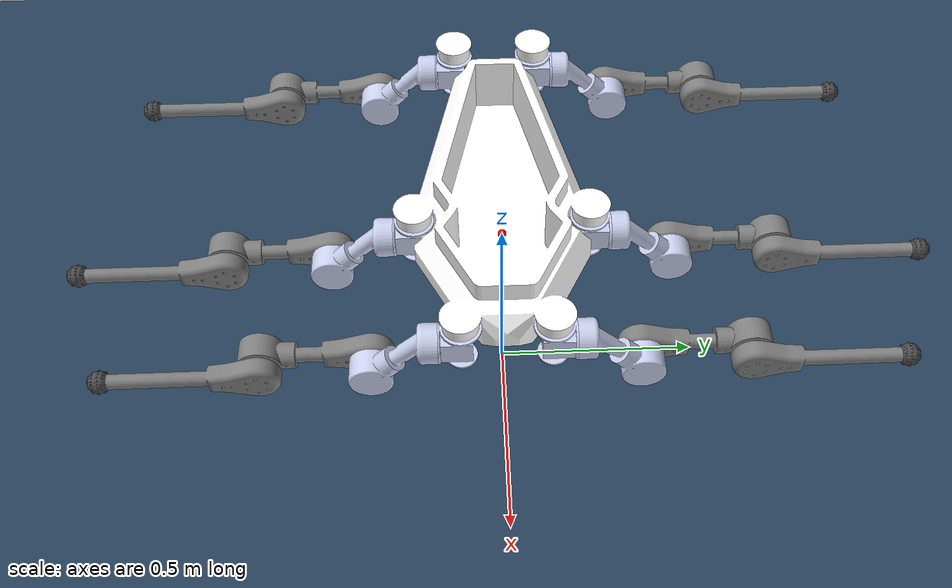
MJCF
<mujoco model="hex4 scene">
  <include file="hex4.xml"/>

  <visual>
    <headlight diffuse="0.6 0.6 0.6" ambient="0.3 0.3 0.3" specular="0 0 0"/>
    <rgba haze="0.15 0.25 0.35 1"/>
    <global azimuth="-130" elevation="-20"/>
  </visual>

  <asset>
    <texture type="skybox" builtin="gradient" rgb1="0.3 0.5 0.7" rgb2="0 0 0" width="512" height="3072"/>
    <texture type="2d" name="groundplane" builtin="checker" mark="edge" rgb1="0.2 0.3 0.4" rgb2="0.1 0.2 0.3"
      markrgb="0.8 0.8 0.8" width="300" height="300"/>
    <material name="groundplane" texture="groundplane" texuniform="true" texrepeat="5 5" reflectance="0.2"/>
  </asset>

  <worldbody>
    <light pos="0 0 1.5" dir="0 0 -1" directional="true"/>
    <geom name="floor" size="0 0 0.05" type="plane" material="groundplane"/>
  </worldbody>

    <keyframe>
        <key name="home" qpos="
        0 0 0.55  1 0 0 0
                     0.0 0.4 -0. 1.5
                     0.0 0.4 -0. 1.5
                     0.0 0.4 -0. 1.5
                     0.0 0.4 -0. 1.5
                     0.0 0.4 -0. 1.5
                     0.0 0.4 -0. 1.5"
          ctrl="
            0 0 0 0
            0 0 0 0
            0 0 0 0
            0 0 0 0
            0 0 0 0
            0 0 0 0"/>
    </keyframe>
</mujoco>

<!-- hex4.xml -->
<mujoco model="hex4">
  <compiler angle="radian" meshdir="assets" autolimits="true"/>

  <option cone="elliptic" impratio="100" ccd_iterations="500" timestep="0.001"/>

  <default>
    <default class="visual">
      <geom type="mesh" contype="0" conaffinity="0" mass="0" group="1"/>
    </default>
    <default class="collision">
      <geom type="mesh" contype="1" conaffinity="1" group="3" friction="0.9 0.1 0.1"/>
    </default>
  </default>

  <asset>
    <mesh name="base_link" file="base_link.STL"/>
    <mesh name="RF_link0" file="RF_link0.STL"/>
    <mesh name="RF_link1" file="RF_link1.STL"/>
    <mesh name="RF_link2" file="RF_link2.STL"/>
    <mesh name="RF_link3" file="RF_link3.STL"/>
    <mesh name="RF_foot"  file="RF_foot.STL"/>
    <mesh name="RM_link0" file="RM_link0.STL"/>
    <mesh name="RM_link1" file="RM_link1.STL"/>
    <mesh name="RM_link2" file="RM_link2.STL"/>
    <mesh name="RM_link3" file="RM_link3.STL"/>
    <mesh name="RM_foot"  file="RM_foot.STL"/>
    <mesh name="RB_link0" file="RB_link0.STL"/>
    <mesh name="RB_link1" file="RB_link1.STL"/>
    <mesh name="RB_link2" file="RB_link2.STL"/>
    <mesh name="RB_link3" file="RB_link3.STL"/>
    <mesh name="RB_foot"  file="RB_foot.STL"/>
    <mesh name="LF_link0" file="LF_link0.STL"/>
    <mesh name="LF_link1" file="LF_link1.STL"/>
    <mesh name="LF_link2" file="LF_link2.STL"/>
    <mesh name="LF_link3" file="LF_link3.STL"/>
    <mesh name="LF_foot"  file="LF_foot.STL"/>
    <mesh name="LM_link0" file="LM_link0.STL"/>
    <mesh name="LM_link1" file="LM_link1.STL"/>
    <mesh name="LM_link2" file="LM_link2.STL"/>
    <mesh name="LM_link3" file="LM_link3.STL"/>
    <mesh name="LM_foot"  file="LM_foot.STL"/>
    <mesh name="LB_link0" file="LB_link0.STL"/>
    <mesh name="LB_link1" file="LB_link1.STL"/>
    <mesh name="LB_link2" file="LB_link2.STL"/>
    <mesh name="LB_link3" file="LB_link3.STL"/>
    <mesh name="LB_foot"  file="LB_foot.STL"/>
  </asset>

  <worldbody>

    <body name="base_link" pos="0 0 0.5">
      <freejoint name="base_free"/>
      <!-- 添加 IMU 所需的 site -->
      <site name="imu" pos="0 0 0" size="0.01" rgba="1 0 0 1"/>
      <!-- fullinertia: ixx iyy izz ixy ixz iyz -->
      <inertial pos="-0.11306 1.6087E-07 0.015131" mass="18.658"
                fullinertia="0.2099 0.96028 1.1173 8.2415E-07 -0.0011811 8.8359E-08"/>
      <geom class="visual" mesh="base_link" rgba="1 1 1 1"/>

      <!-- RF (Right Front) Leg -->
      <body name="RF_link0" pos="0.3 -0.1 0" euler="0 0 -1.5708">
        <joint name="RF_joint0" type="hinge" axis="0 0 1" range="-3.14 3.14" damping="0.1"/>
        <inertial pos="0.028662 -3.8858E-16 0.0018937" mass="1.0785"
                  fullinertia="0.0010572 0.0014046 0.0010857 -4.3198E-19 -1.1802E-18 -2.2555E-19"/>
        <geom class="visual" mesh="RF_link0" rgba="0.792 0.819 0.933 1"/>
        <geom class="collision" mesh="RF_link0"/>

        <body name="RF_link1" pos="0.05 0 0" euler="1.5708 1.5708 0">
          <joint name="RF_joint1" type="hinge" axis="0 0 1" range="-3.14 3.14" damping="0.1"/>
          <inertial pos="-0.013313 -0.078792 0.12187" mass="1.1898"
                    fullinertia="0.0016823 0.0016742 0.0017439 9.6806E-05 -9.9578E-05 -0.00024246"/>
          <geom class="visual" mesh="RF_link1" rgba="0.792 0.819 0.933 1"/>

          <body name="RF_link2" pos="0 -0.10796 0.15296" euler="1.5708 1.5708 0">
            <joint name="RF_joint2" type="hinge" axis="0 0 1" range="-3.14 3.14" damping="0.1"/>
            <inertial pos="5.7607E-07 0.18665 -0.042993" mass="1.2302"
                      fullinertia="0.002316 0.001494 0.0022028 -2.1887E-08 -1.4162E-09 0.0001734"/>
            <geom class="visual" mesh="RF_link2" rgba="0.498 0.498 0.498 1"/>
            <geom class="collision" mesh="RF_link2"/>

            <body name="RF_link3" pos="0 0.25 0" euler="0 0 0">
              <joint name="RF_joint3" type="hinge" axis="0 0 1" range="-3.14 3.14" damping="0.1"/>
              <inertial pos="8.9473E-09 0.081551 0.0030752" mass="0.3834"
                        fullinertia="0.0010865 0.00026792 0.001212 -1.4698E-12 -2.5591E-11 -3.7009E-05"/>
              <geom class="visual" mesh="RF_link3" rgba="0.498 0.498 0.498 1"/>

              <body name="RF_foot" pos="0 0.35 0" euler="3.1416 0 -1.5708">
                <inertial pos="0.00464 1.11E-16 -4.04E-16" mass="0.039234"
                          fullinertia="1.3682E-05 1.1102E-05 1.1102E-05 3.0967E-17 9.554E-18 -7.737E-18"/>
                <geom class="visual" mesh="RM_foot" rgba="0.298 0.298 0.298 1"/>
                <geom class="collision" mesh="RM_foot" name="RF_foot_geom"/>
                <site name="RF_touch_site" size="0.01" rgba="0 0 0 0"/>
              </body>
            </body>
          </body>
        </body>
      </body>

      <!-- RM (Right Middle) Leg -->
      <body name="RM_link0" pos="0 -0.2 0" euler="0 0 -1.5708">
        <joint name="RM_joint0" type="hinge" axis="0 0 1" range="-3.14 3.14" damping="0.1"/>
        <inertial pos="0.028662 -9.2517E-19 0.0018937" mass="1.0785"
                  fullinertia="0.0010572 0.0014046 0.0010857 -2.0448E-19 -1.2054E-18 -1.466E-19"/>
        <geom class="visual" mesh="RM_link0" rgba="0.792 0.819 0.933 1"/>
        <geom class="collision" mesh="RM_link0"/>

        <body name="RM_link1" pos="0.05 0 0" euler="1.5708 1.5708 0">
          <joint name="RM_joint1" type="hinge" axis="0 0 1" range="-3.14 3.14" damping="0.1"/>
          <inertial pos="-0.013313 -0.078792 0.12187" mass="1.1898"
                    fullinertia="0.0016823 0.0016742 0.0017439 9.6806E-05 -9.9578E-05 -0.00024246"/>
          <geom class="visual" mesh="RM_link1" rgba="0.792 0.819 0.933 1"/>

          <body name="RM_link2" pos="0 -0.10796 0.15296" euler="1.5708 1.5708 0">
            <joint name="RM_joint2" type="hinge" axis="0 0 1" range="-3.14 3.14" damping="0.1"/>
            <inertial pos="5.760688E-07 0.186653 -0.042993" mass="1.230156"
                      fullinertia="0.002316 0.001494 0.0022028 -2.1887E-08 -1.4162E-09 0.0001734"/>
            <geom class="visual" mesh="RM_link2" rgba="0.498 0.498 0.498 1"/>
            <geom class="collision" mesh="RM_link2"/>

            <body name="RM_link3" pos="0 0.25 0" euler="0 0 0">
              <joint name="RM_joint3" type="hinge" axis="0 0 1" range="-3.14 3.14" damping="0.1"/>
              <inertial pos="8.947E-09 0.081551 0.003075" mass="0.383404"
                        fullinertia="0.0010865 0.00026792 0.001212 -1.4698E-12 -2.5591E-11 -3.7009E-05"/>
              <geom class="visual" mesh="RM_link3" rgba="0.498 0.498 0.498 1"/>

              <body name="RM_foot" pos="0 0.35 0" euler="3.1416 0 -1.5708">
                <inertial pos="0.00464 1.11E-16 -4.04E-16" mass="0.039234"
                          fullinertia="1.3682E-05 1.1102E-05 1.1102E-05 3.0967E-17 9.554E-18 -7.737E-18"/>
                <geom class="visual" mesh="RM_foot" rgba="0.298 0.298 0.298 1"/>
                <geom class="collision" mesh="RM_foot" name="RM_foot_geom"/>
                <site name="RM_touch_site" size="0.01" rgba="0 0 0 0"/>
              </body>
            </body>
          </body>
        </body>
      </body>

      <!-- RB (Right Back) Leg -->
      <body name="RB_link0" pos="-0.55 -0.1 0" euler="0 0 -1.5708">
        <joint name="RB_joint0" type="hinge" axis="0 0 1" range="-3.14 3.14" damping="0.1"/>
        <inertial pos="0.028662 0 0.001894" mass="1.07845"
                  fullinertia="0.0010572 0.0014046 0.0010857 -2.644E-19 -1.068E-18 -1.331E-19"/>
        <geom class="visual" mesh="RB_link0" rgba="0.792 0.819 0.933 1"/>
        <geom class="collision" mesh="RB_link0"/>

        <body name="RB_link1" pos="0.05 0 0" euler="1.5708 1.5708 0">
          <joint name="RB_joint1" type="hinge" axis="0 0 1" range="-3.14 3.14" damping="0.1"/>
          <inertial pos="-0.013313 -0.078792 0.12187" mass="1.18978"
                    fullinertia="0.0016823 0.0016742 0.0017439 9.68E-05 -9.95E-05 -0.0002425"/>
          <geom class="visual" mesh="RB_link1" rgba="0.792 0.819 0.933 1"/>

          <body name="RB_link2" pos="0 -0.10796 0.15296" euler="1.5708 1.5708 0">
            <joint name="RB_joint2" type="hinge" axis="0 0 1" range="-3.14 3.14" damping="0.1"/>
            <inertial pos="5.7607E-07 0.18665 -0.04299" mass="1.23016"
                      fullinertia="0.002316 0.001494 0.002203 -2.1887E-08 -1.4162E-09 0.0001734"/>
            <geom class="visual" mesh="RB_link2" rgba="0.498 0.498 0.498 1"/>
            <geom class="collision" mesh="RB_link2"/>

            <body name="RB_link3" pos="0 0.25 0" euler="0 0 0">
              <joint name="RB_joint3" type="hinge" axis="0 0 1" range="-3.14 3.14" damping="0.1"/>
              <inertial pos="8.947E-09 0.08155 -0.003075" mass="0.383405"
                        fullinertia="0.0010865 0.0002679 0.001212 -1.4698E-12 -2.559E-11 3.701E-05"/>
              <geom class="visual" mesh="RB_link3" rgba="0.498 0.498 0.498 1"/>

              <body name="RB_foot" pos="0 0.35 0" euler="3.1416 0 -1.5708">
                <inertial pos="0.00464 -8.66E-15 -2.11E-15" mass="0.039234"
                          fullinertia="1.368E-05 1.11E-05 1.11E-05 1.849E-17 4.9E-18 -7.737E-18"/>
                <geom class="visual" mesh="RB_foot" rgba="0.298 0.298 0.298 1"/>
                <geom class="collision" mesh="RB_foot" name="RB_foot_geom"/>
                <site name="RB_touch_site" size="0.01" rgba="0 0 0 0"/>
              </body>
            </body>
          </body>
        </body>
      </body>

      <!-- LF (Left Front) Leg -->
      <body name="LF_link0" pos="0.3 0.1 0" euler="3.1416 0 -1.5708">
        <joint name="LF_joint0" type="hinge" axis="0 0 1" range="-3.14 3.14" damping="0.1"/>
        <inertial pos="0.028662 -2.775E-16 -0.00189" mass="1.07846"
                  fullinertia="0.0010572 0.0014046 0.0010857 2.625E-19 7.933E-19 -4.94E-19"/>
        <geom class="visual" mesh="LF_link0" rgba="0.792 0.819 0.933 1"/>
        <geom class="collision" mesh="LF_link0"/>

        <body name="LF_link1" pos="0.05 0 0" euler="-1.5708 -1.5708 0">
          <joint name="LF_joint1" type="hinge" axis="0 0 1" range="-3.14 3.14" damping="0.1"/>
          <inertial pos="-0.01354 -0.07879 -0.12187" mass="1.18978"
                    fullinertia="0.0016823 0.0016742 0.0017439 9.608E-05 9.33E-05 0.0002425"/>
          <geom class="visual" mesh="LF_link1" rgba="0.792 0.819 0.933 1"/>

          <body name="LF_link2" pos="0 -0.10796 -0.15296" euler="-1.5708 -1.5708 0">
            <joint name="LF_joint2" type="hinge" axis="0 0 1" range="-3.14 3.14" damping="0.1"/>
            <inertial pos="-5.76E-07 0.18665 0.04299" mass="1.23016"
                      fullinertia="0.002316 0.001494 0.002203 2.1887E-08 -1.4162E-09 -0.0001734"/>
            <geom class="visual" mesh="LF_link2" rgba="0.498 0.498 0.498 1"/>
            <geom class="collision" mesh="LF_link2"/>

            <body name="LF_link3" pos="0 0.25 0" euler="0 0 0">
              <joint name="LF_joint3" type="hinge" axis="0 0 1" range="-3.14 3.14" damping="0.1"/>
              <inertial pos="-8.947E-09 0.08155 -0.003075" mass="0.383405"
                        fullinertia="0.0010865 0.0002679 0.001212 1.469E-12 -2.559E-11 3.701E-05"/>
              <geom class="visual" mesh="LF_link3" rgba="0.498 0.498 0.498 1"/>

              <body name="LF_foot" pos="0 0.35 0" euler="3.14159 0 -1.5708">
                <inertial pos="0.00464 -1.388E-17 -1.388E-15" mass="0.039234"
                          fullinertia="1.368E-05 1.11E-05 1.11E-05 -2.91E-18 1.847E-17 -1.43E-17"/>
                <geom class="visual" mesh="LF_foot" rgba="0.298 0.298 0.298 1"/>
                <geom class="collision" mesh="LF_foot" name="LF_foot_geom"/>
                <site name="LF_touch_site" size="0.01" rgba="0 0 0 0"/>

              </body>
            </body>
          </body>
        </body>
      </body>

      <!-- LM (Left Middle) Leg -->
      <body name="LM_link0" pos="0 0.2 0" euler="3.1416 0 -1.5708">
        <joint name="LM_joint0" type="hinge" axis="0 0 1" range="-3.14 3.14" damping="0.1"/>
        <inertial pos="0.028662 -1.89E-16 -0.00189" mass="1.07846"
                  fullinertia="0.0010572 0.0014046 0.0010857 1.275E-19 8.62E-19 -6.305E-19"/>
        <geom class="visual" mesh="LM_link0" rgba="0.792 0.819 0.933 1"/>
        <geom class="collision" mesh="LM_link0"/>

        <body name="LM_link1" pos="0.05 0 0" euler="-1.5708 -1.5708 0">
          <joint name="LM_joint1" type="hinge" axis="0 0 1" range="-3.14 3.14" damping="0.1"/>
          <inertial pos="-0.01354 -0.07879 -0.12187" mass="1.18978"
                    fullinertia="0.0016823 0.0016742 0.0017439 9.608E-05 9.33E-05 0.0002425"/>
          <geom class="visual" mesh="LM_link1" rgba="0.792 0.819 0.933 1"/>

          <body name="LM_link2" pos="0 -0.10796 -0.15296" euler="-1.5708 -1.5708 0">
            <joint name="LM_joint2" type="hinge" axis="0 0 1" range="-3.14 3.14" damping="0.1"/>
            <inertial pos="-5.76E-07 0.18665 0.04299" mass="1.23016"
                      fullinertia="0.002316 0.001494 0.002203 2.1887E-08 -1.4162E-09 -0.0001734"/>
            <geom class="visual" mesh="LM_link2" rgba="0.498 0.498 0.498 1"/>
            <geom class="collision" mesh="LM_link2"/>

            <body name="LM_link3" pos="0 0.25 0" euler="0 0 0">
              <joint name="LM_joint3" type="hinge" axis="0 0 1" range="-3.14 3.14" damping="0.1"/>
              <inertial pos="-8.947E-09 0.08155 -0.003075" mass="0.383405"
                        fullinertia="0.0010865 0.0002679 0.001212 1.469E-12 -2.559E-11 3.701E-05"/>
              <geom class="visual" mesh="LM_link3" rgba="0.498 0.498 0.498 1"/>

              <body name="LM_foot" pos="0 0.35 0" euler="3.1416 0 -1.5708">
                <inertial pos="0.00464 9.71E-17 -2.53E-16" mass="0.039234"
                          fullinertia="1.368E-05 1.11E-05 1.11E-05 1.158E-17 -1.265E-17 1.329E-17"/>
                <geom class="visual" mesh="LM_foot" rgba="0.298 0.298 0.298 1"/>
                <geom class="collision" mesh="LM_foot" name="LM_foot_geom"/>
                <site name="LM_touch_site" size="0.01" rgba="0 0 0 0"/>
              </body>
            </body>
          </body>
        </body>
      </body>

      <!-- LB (Left Back) Leg -->
      <body name="LB_link0" pos="-0.55 0.1 0" euler="3.1416 0 -1.5708">
        <joint name="LB_joint0" type="hinge" axis="0 0 1" range="-3.14 3.14" damping="0.1"/>
        <inertial pos="0.028662 -2.775E-16 -0.00189" mass="1.07846"
                  fullinertia="0.0010572 0.0014046 0.0010857 1.275E-19 8.623E-19 -6.305E-19"/>
        <geom class="visual" mesh="LB_link0" rgba="0.792 0.819 0.933 1"/>
        <geom class="collision" mesh="LB_link0"/>

        <body name="LB_link1" pos="0.05 0 0" euler="-1.5708 -1.5708 0">
          <joint name="LB_joint1" type="hinge" axis="0 0 1" range="-3.14 3.14" damping="0.1"/>
          <inertial pos="-0.01354 -0.07879 -0.12187" mass="1.18978"
                    fullinertia="0.0016823 0.0016742 0.0017439 9.608E-05 9.33E-05 0.0002425"/>
          <geom class="visual" mesh="LB_link1" rgba="0.792 0.819 0.933 1"/>

          <body name="LB_link2" pos="0 -0.10796 -0.15296" euler="-1.5708 -1.5708 0">
            <joint name="LB_joint2" type="hinge" axis="0 0 1" range="-3.14 3.14" damping="0.1"/>
            <inertial pos="-5.76E-07 0.18665 0.04299" mass="1.23016"
                      fullinertia="0.002316 0.001494 0.002203 2.1887E-08 -1.4162E-09 -0.0001734"/>
            <geom class="visual" mesh="LB_link2" rgba="0.498 0.498 0.498 1"/>
            <geom class="collision" mesh="LB_link2"/>

            <body name="LB_link3" pos="0 0.25 0" euler="0 0 0">
              <joint name="LB_joint3" type="hinge" axis="0 0 1" range="-3.14 3.14" damping="0.1"/>
              <inertial pos="-8.947E-09 0.08155 -0.003075" mass="0.383405"
                        fullinertia="0.0010865 0.0002679 0.001212 1.469E-12 -2.559E-11 3.701E-05"/>
              <geom class="visual" mesh="LB_link3" rgba="0.498 0.498 0.498 1"/>

              <body name="LB_foot" pos="0 0.35 0" euler="3.1416 0 -1.5708">
                <inertial pos="0.00464 9.71E-17 -2.53E-16" mass="0.039234"
                          fullinertia="1.368E-05 1.11E-05 1.11E-05 1.122E-17 -2.54E-17 -1.57E-18"/>
                <geom class="visual" mesh="LM_foot" rgba="0.298 0.298 0.298 1"/>
                <geom class="collision" mesh="LM_foot" name="LB_foot_geom"/>
                <site name="LB_touch_site" size="0.01" rgba="0 0 0 0"/>
              </body>
            </body>
          </body>
        </body>
      </body>
    </body>
  </worldbody>

  <actuator>
    <position name="RF_0" joint="RF_joint0" forcerange="-88 88" ctrlrange="-0.80 0.80" gear="1" ctrllimited="true"/>
    <position name="RF_1" joint="RF_joint1" forcerange="-88 88" ctrlrange="-1.50 1.50" gear="1" ctrllimited="true"/>
    <position name="RF_2" joint="RF_joint2" forcerange="-88 88" ctrlrange="-2.00 1.00" gear="1" ctrllimited="true"/>
    <position name="RF_3" joint="RF_joint3" forcerange="-88 88" ctrlrange="-1.00 3.00" gear="1" ctrllimited="true"/>
    <position name="RM_0" joint="RM_joint0" forcerange="-88 88" ctrlrange="-0.80 0.80" gear="1" ctrllimited="true"/>
    <position name="RM_1" joint="RM_joint1" forcerange="-88 88" ctrlrange="-1.50 1.50" gear="1" ctrllimited="true"/>
    <position name="RM_2" joint="RM_joint2" forcerange="-88 88" ctrlrange="-2.00 1.00" gear="1" ctrllimited="true"/>
    <position name="RM_3" joint="RM_joint3" forcerange="-88 88" ctrlrange="-1.00 3.00" gear="1" ctrllimited="true"/>
    <position name="RB_0" joint="RB_joint0" forcerange="-88 88" ctrlrange="-0.80 0.80" gear="1" ctrllimited="true"/>
    <position name="RB_1" joint="RB_joint1" forcerange="-88 88" ctrlrange="-1.50 1.50" gear="1" ctrllimited="true"/>
    <position name="RB_2" joint="RB_joint2" forcerange="-88 88" ctrlrange="-2.00 1.00" gear="1" ctrllimited="true"/>
    <position name="RB_3" joint="RB_joint3" forcerange="-88 88" ctrlrange="-1.00 3.00" gear="1" ctrllimited="true"/>

    <position name="LF_0" joint="LF_joint0" forcerange="-88 88" ctrlrange="-0.80 0.80" gear="1" ctrllimited="true"/>
    <position name="LF_1" joint="LF_joint1" forcerange="-88 88" ctrlrange="-1.50 1.50" gear="1" ctrllimited="true"/>
    <position name="LF_2" joint="LF_joint2" forcerange="-88 88" ctrlrange="-2.00 1.00" gear="1" ctrllimited="true"/>
    <position name="LF_3" joint="LF_joint3" forcerange="-88 88" ctrlrange="-1.00 3.00" gear="1" ctrllimited="true"/>
    <position name="LM_0" joint="LM_joint0" forcerange="-88 88" ctrlrange="-0.80 0.80" gear="1" ctrllimited="true"/>
    <position name="LM_1" joint="LM_joint1" forcerange="-88 88" ctrlrange="-1.50 1.50" gear="1" ctrllimited="true"/>
    <position name="LM_2" joint="LM_joint2" forcerange="-88 88" ctrlrange="-2.00 1.00" gear="1" ctrllimited="true"/>
    <position name="LM_3" joint="LM_joint3" forcerange="-88 88" ctrlrange="-1.00 3.00" gear="1" ctrllimited="true"/>
    <position name="LB_0" joint="LB_joint0" forcerange="-88 88" ctrlrange="-0.80 0.80" gear="1" ctrllimited="true"/>
    <position name="LB_1" joint="LB_joint1" forcerange="-88 88" ctrlrange="-1.50 1.50" gear="1" ctrllimited="true"/>
    <position name="LB_2" joint="LB_joint2" forcerange="-88 88" ctrlrange="-2.00 1.00" gear="1" ctrllimited="true"/>
    <position name="LB_3" joint="LB_joint3" forcerange="-88 88" ctrlrange="-1.00 3.00" gear="1" ctrllimited="true"/>
  </actuator>

  <sensor>
    <!-- Base IMU (accelerometer and gyro require a site) -->
    <gyro site="imu" name="gyro"/>
    <velocimeter site="imu" name="local_linvel"/>
    <framepos objtype="site" objname="imu" name="position"/>
    <framezaxis objtype="site" objname="imu" name="upvector"/>
    <framelinvel objtype="site" objname="imu" name="global_linvel"/>
    <frameangvel objtype="site" objname="imu" name="global_angvel"/>

    <!-- Joint Positions and Velocities -->
    <jointpos name="RF_0_pos" joint="RF_joint0"/><jointvel name="RF_0_vel" joint="RF_joint0"/>
    <jointpos name="RF_1_pos" joint="RF_joint1"/><jointvel name="RF_1_vel" joint="RF_joint1"/>
    <jointpos name="RF_2_pos" joint="RF_joint2"/><jointvel name="RF_2_vel" joint="RF_joint2"/>
    <jointpos name="RF_3_pos" joint="RF_joint3"/><jointvel name="RF_3_vel" joint="RF_joint3"/>

    <jointpos name="RM_0_pos" joint="RM_joint0"/><jointvel name="RM_0_vel" joint="RM_joint0"/>
    <jointpos name="RM_1_pos" joint="RM_joint1"/><jointvel name="RM_1_vel" joint="RM_joint1"/>
    <jointpos name="RM_2_pos" joint="RM_joint2"/><jointvel name="RM_2_vel" joint="RM_joint2"/>
    <jointpos name="RM_3_pos" joint="RM_joint3"/><jointvel name="RM_3_vel" joint="RM_joint3"/>

    <jointpos name="RB_0_pos" joint="RB_joint0"/><jointvel name="RB_0_vel" joint="RB_joint0"/>
    <jointpos name="RB_1_pos" joint="RB_joint1"/><jointvel name="RB_1_vel" joint="RB_joint1"/>
    <jointpos name="RB_2_pos" joint="RB_joint2"/><jointvel name="RB_2_vel" joint="RB_joint2"/>
    <jointpos name="RB_3_pos" joint="RB_joint3"/><jointvel name="RB_3_vel" joint="RB_joint3"/>

    <jointpos name="LF_0_pos" joint="LF_joint0"/><jointvel name="LF_0_vel" joint="LF_joint0"/>
    <jointpos name="LF_1_pos" joint="LF_joint1"/><jointvel name="LF_1_vel" joint="LF_joint1"/>
    <jointpos name="LF_2_pos" joint="LF_joint2"/><jointvel name="LF_2_vel" joint="LF_joint2"/>
    <jointpos name="LF_3_pos" joint="LF_joint3"/><jointvel name="LF_3_vel" joint="LF_joint3"/>

    <jointpos name="LM_0_pos" joint="LM_joint0"/><jointvel name="LM_0_vel" joint="LM_joint0"/>
    <jointpos name="LM_1_pos" joint="LM_joint1"/><jointvel name="LM_1_vel" joint="LM_joint1"/>
    <jointpos name="LM_2_pos" joint="LM_joint2"/><jointvel name="LM_2_vel" joint="LM_joint2"/>
    <jointpos name="LM_3_pos" joint="LM_joint3"/><jointvel name="LM_3_vel" joint="LM_joint3"/>

    <jointpos name="LB_0_pos" joint="LB_joint0"/><jointvel name="LB_0_vel" joint="LB_joint0"/>
    <jointpos name="LB_1_pos" joint="LB_joint1"/><jointvel name="LB_1_vel" joint="LB_joint1"/>
    <jointpos name="LB_2_pos" joint="LB_joint2"/><jointvel name="LB_2_vel" joint="LB_joint2"/>
    <jointpos name="LB_3_pos" joint="LB_joint3"/><jointvel name="LB_3_vel" joint="LB_joint3"/>

    <!-- Contact Sensors (Touch) -->
    <touch name="RF_foot_contact" site="RF_touch_site"/>
    <touch name="RM_foot_contact" site="RM_touch_site"/>
    <touch name="RB_foot_contact" site="RB_touch_site"/>
    <touch name="LF_foot_contact" site="LF_touch_site"/>
    <touch name="LM_foot_contact" site="LM_touch_site"/>
    <touch name="LB_foot_contact" site="LB_touch_site"/>

    <framepos objtype="site" objname="RF_touch_site" name="RF_pos"/>
    <framepos objtype="site" objname="RM_touch_site" name="RM_pos"/>
    <framepos objtype="site" objname="RB_touch_site" name="RB_pos"/>
    <framepos objtype="site" objname="LF_touch_site" name="LF_pos"/>
    <framepos objtype="site" objname="LM_touch_site" name="LM_pos"/>
    <framepos objtype="site" objname="LB_touch_site" name="LB_pos"/>
  </sensor>
</mujoco>
